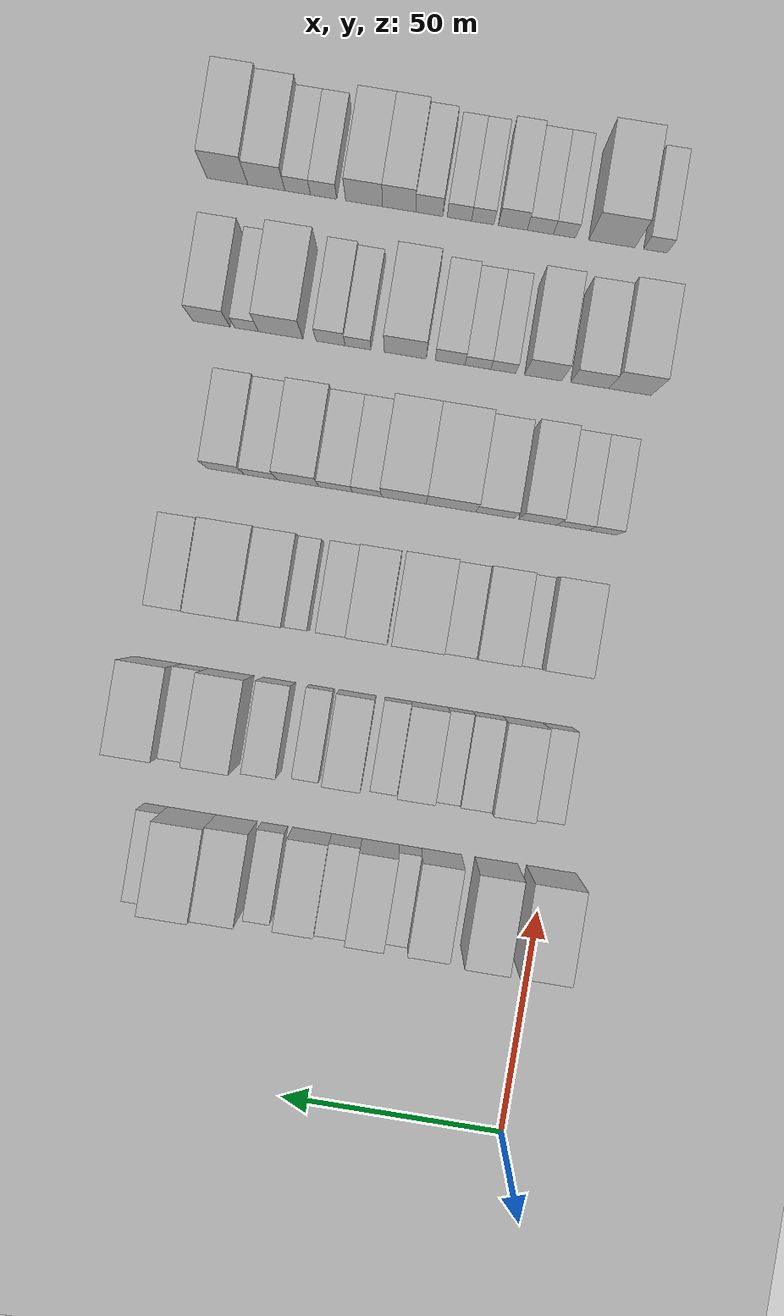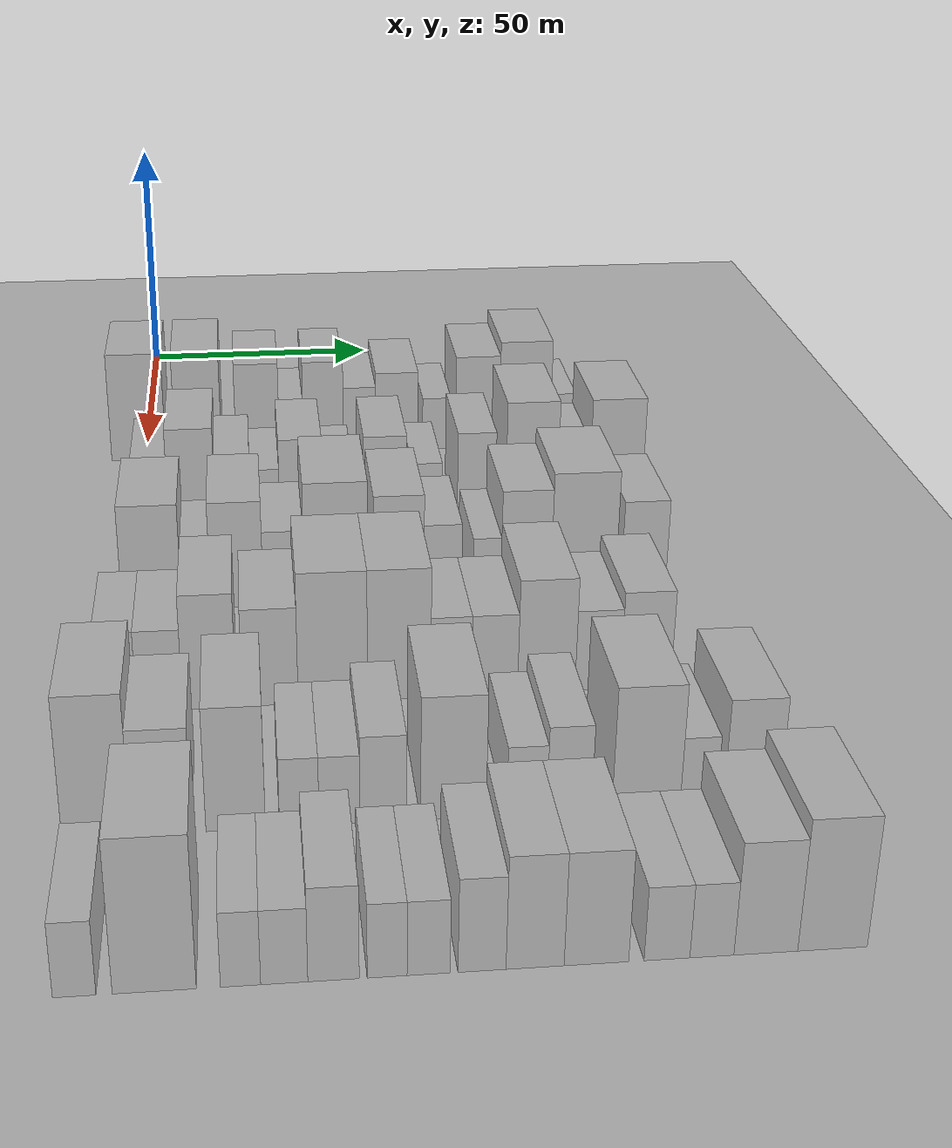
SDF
<sdf version="1.6">
 <world name="default">
  <include><name>ground_plane_1</name><uri>model://HANNAS_ground_plane</uri></include>
  <include>
   <name>ground_plane_2</name>
   <uri>model://HANNAS_ground_plane</uri>
   <pose>100 0 0  0 0 0</pose>
  </include>
  <model name="building_57">
   <static>1</static>
   <pose>50.0000 -1.4303 0 0.000000 0.000000 0.000000</pose>
   <link name="link">
    <pose>0 0 12.00 0 0 0</pose>
    <collision name="collision"><geometry><box><size>20.0000 11.2115 24.0000</size></box></geometry></collision>
    <visual name="visual">
     <cast_shadows>0</cast_shadows>
     <geometry><box><size>20.0000 11.2115 24.0000</size></box></geometry>
     <material>
      <script>
       <uri>model://HANNAS_wall/materials/scripts</uri>
       <uri>model://HANNAS_wall/materials/textures</uri>
       <name>vrc/HANNAS_wall</name>
      </script>
     </material>
    </visual>
   </link>
  </model>
  <model name="building_58">
   <static>1</static>
   <pose>50.0000 10.9994 0 0.000000 0.000000 0.000000</pose>
   <link name="link">
    <pose>0 0 12.00 0 0 0</pose>
    <collision name="collision"><geometry><box><size>20.0000 9.6478 24.0000</size></box></geometry></collision>
    <visual name="visual">
     <cast_shadows>0</cast_shadows>
     <geometry><box><size>20.0000 9.6478 24.0000</size></box></geometry>
     <material>
      <script>
       <uri>model://HANNAS_wall/materials/scripts</uri>
       <uri>model://HANNAS_wall/materials/textures</uri>
       <name>vrc/HANNAS_wall</name>
      </script>
     </material>
    </visual>
   </link>
  </model>
  <model name="building_59">
   <static>1</static>
   <pose>50.0000 23.3561 0 0.000000 0.000000 0.000000</pose>
   <link name="link">
    <pose>0 0 10.50 0 0 0</pose>
    <collision name="collision"><geometry><box><size>20.0000 9.0657 21.0000</size></box></geometry></collision>
    <visual name="visual">
     <cast_shadows>0</cast_shadows>
     <geometry><box><size>20.0000 9.0657 21.0000</size></box></geometry>
     <material>
      <script>
       <uri>model://HANNAS_wall/materials/scripts</uri>
       <uri>model://HANNAS_wall/materials/textures</uri>
       <name>vrc/HANNAS_wall</name>
      </script>
     </material>
    </visual>
   </link>
  </model>
  <model name="building_60">
   <static>1</static>
   <pose>50.0000 30.4040 0 0.000000 0.000000 0.000000</pose>
   <link name="link">
    <pose>0 0 6.00 0 0 0</pose>
    <collision name="collision"><geometry><box><size>20.0000 5.0299 12.0000</size></box></geometry></collision>
    <visual name="visual">
     <cast_shadows>0</cast_shadows>
     <geometry><box><size>20.0000 5.0299 12.0000</size></box></geometry>
     <material>
      <script>
       <uri>model://HANNAS_wall/materials/scripts</uri>
       <uri>model://HANNAS_wall/materials/textures</uri>
       <name>vrc/HANNAS_wall</name>
      </script>
     </material>
    </visual>
   </link>
  </model>
  <model name="building_61">
   <static>1</static>
   <pose>50.0000 37.1323 0 0.000000 0.000000 0.000000</pose>
   <link name="link">
    <pose>0 0 10.50 0 0 0</pose>
    <collision name="collision"><geometry><box><size>20.0000 8.4268 21.0000</size></box></geometry></collision>
    <visual name="visual">
     <cast_shadows>0</cast_shadows>
     <geometry><box><size>20.0000 8.4268 21.0000</size></box></geometry>
     <material>
      <script>
       <uri>model://HANNAS_wall/materials/scripts</uri>
       <uri>model://HANNAS_wall/materials/textures</uri>
       <name>vrc/HANNAS_wall</name>
      </script>
     </material>
    </visual>
   </link>
  </model>
  <model name="building_62">
   <static>1</static>
   <pose>50.0000 44.7533 0 0.000000 0.000000 0.000000</pose>
   <link name="link">
    <pose>0 0 7.50 0 0 0</pose>
    <collision name="collision"><geometry><box><size>20.0000 6.8150 15.0000</size></box></geometry></collision>
    <visual name="visual">
     <cast_shadows>0</cast_shadows>
     <geometry><box><size>20.0000 6.8150 15.0000</size></box></geometry>
     <material>
      <script>
       <uri>model://HANNAS_wall/materials/scripts</uri>
       <uri>model://HANNAS_wall/materials/textures</uri>
       <name>vrc/HANNAS_wall</name>
      </script>
     </material>
    </visual>
   </link>
  </model>
  <model name="building_63">
   <static>1</static>
   <pose>50.0000 52.6108 0 0.000000 0.000000 0.000000</pose>
   <link name="link">
    <pose>0 0 9.00 0 0 0</pose>
    <collision name="collision"><geometry><box><size>20.0000 8.9001 18.0000</size></box></geometry></collision>
    <visual name="visual">
     <cast_shadows>0</cast_shadows>
     <geometry><box><size>20.0000 8.9001 18.0000</size></box></geometry>
     <material>
      <script>
       <uri>model://HANNAS_wall/materials/scripts</uri>
       <uri>model://HANNAS_wall/materials/textures</uri>
       <name>vrc/HANNAS_wall</name>
      </script>
     </material>
    </visual>
   </link>
  </model>
  <model name="building_64">
   <static>1</static>
   <pose>50.0000 61.0438 0 0.000000 0.000000 0.000000</pose>
   <link name="link">
    <pose>0 0 6.00 0 0 0</pose>
    <collision name="collision"><geometry><box><size>20.0000 5.9659 12.0000</size></box></geometry></collision>
    <visual name="visual">
     <cast_shadows>0</cast_shadows>
     <geometry><box><size>20.0000 5.9659 12.0000</size></box></geometry>
     <material>
      <script>
       <uri>model://HANNAS_wall/materials/scripts</uri>
       <uri>model://HANNAS_wall/materials/textures</uri>
       <name>vrc/HANNAS_wall</name>
      </script>
     </material>
    </visual>
   </link>
  </model>
  <model name="building_65">
   <static>1</static>
   <pose>50.0000 69.6880 0 0.000000 0.000000 0.000000</pose>
   <link name="link">
    <pose>0 0 10.50 0 0 0</pose>
    <collision name="collision"><geometry><box><size>20.0000 9.3225 21.0000</size></box></geometry></collision>
    <visual name="visual">
     <cast_shadows>0</cast_shadows>
     <geometry><box><size>20.0000 9.3225 21.0000</size></box></geometry>
     <material>
      <script>
       <uri>model://HANNAS_wall/materials/scripts</uri>
       <uri>model://HANNAS_wall/materials/textures</uri>
       <name>vrc/HANNAS_wall</name>
      </script>
     </material>
    </visual>
   </link>
  </model>
  <model name="building_66">
   <static>1</static>
   <pose>50.0000 79.8039 0 0.000000 0.000000 0.000000</pose>
   <link name="link">
    <pose>0 0 12.00 0 0 0</pose>
    <collision name="collision"><geometry><box><size>20.0000 10.9093 24.0000</size></box></geometry></collision>
    <visual name="visual">
     <cast_shadows>0</cast_shadows>
     <geometry><box><size>20.0000 10.9093 24.0000</size></box></geometry>
     <material>
      <script>
       <uri>model://HANNAS_wall/materials/scripts</uri>
       <uri>model://HANNAS_wall/materials/textures</uri>
       <name>vrc/HANNAS_wall</name>
      </script>
     </material>
    </visual>
   </link>
  </model>
  <model name="building_67">
   <static>1</static>
   <pose>50.0000 87.8766 0 0.000000 0.000000 0.000000</pose>
   <link name="link">
    <pose>0 0 6.00 0 0 0</pose>
    <collision name="collision"><geometry><box><size>20.0000 5.2361 12.0000</size></box></geometry></collision>
    <visual name="visual">
     <cast_shadows>0</cast_shadows>
     <geometry><box><size>20.0000 5.2361 12.0000</size></box></geometry>
     <material>
      <script>
       <uri>model://HANNAS_wall/materials/scripts</uri>
       <uri>model://HANNAS_wall/materials/textures</uri>
       <name>vrc/HANNAS_wall</name>
      </script>
     </material>
    </visual>
   </link>
  </model>
  <model name="building_173">
   <static>1</static>
   <pose>82.0000 2.3529 0 0.000000 0.000000 0.000000</pose>
   <link name="link">
    <pose>0 0 7.50 0 0 0</pose>
    <collision name="collision"><geometry><box><size>20.0000 6.7178 15.0000</size></box></geometry></collision>
    <visual name="visual">
     <cast_shadows>0</cast_shadows>
     <geometry><box><size>20.0000 6.7178 15.0000</size></box></geometry>
     <material>
      <script>
       <uri>model://HANNAS_wall/materials/scripts</uri>
       <uri>model://HANNAS_wall/materials/textures</uri>
       <name>vrc/HANNAS_wall</name>
      </script>
     </material>
    </visual>
   </link>
  </model>
  <model name="building_174">
   <static>1</static>
   <pose>82.0000 10.2117 0 0.000000 0.000000 0.000000</pose>
   <link name="link">
    <pose>0 0 10.50 0 0 0</pose>
    <collision name="collision"><geometry><box><size>20.0000 8.9999 21.0000</size></box></geometry></collision>
    <visual name="visual">
     <cast_shadows>0</cast_shadows>
     <geometry><box><size>20.0000 8.9999 21.0000</size></box></geometry>
     <material>
      <script>
       <uri>model://HANNAS_wall/materials/scripts</uri>
       <uri>model://HANNAS_wall/materials/textures</uri>
       <name>vrc/HANNAS_wall</name>
      </script>
     </material>
    </visual>
   </link>
  </model>
  <model name="building_175">
   <static>1</static>
   <pose>82.0000 18.0980 0 0.000000 0.000000 0.000000</pose>
   <link name="link">
    <pose>0 0 7.50 0 0 0</pose>
    <collision name="collision"><geometry><box><size>20.0000 6.7728 15.0000</size></box></geometry></collision>
    <visual name="visual">
     <cast_shadows>0</cast_shadows>
     <geometry><box><size>20.0000 6.7728 15.0000</size></box></geometry>
     <material>
      <script>
       <uri>model://HANNAS_wall/materials/scripts</uri>
       <uri>model://HANNAS_wall/materials/textures</uri>
       <name>vrc/HANNAS_wall</name>
      </script>
     </material>
    </visual>
   </link>
  </model>
  <model name="building_176">
   <static>1</static>
   <pose>82.0000 24.2576 0 0.000000 0.000000 0.000000</pose>
   <link name="link">
    <pose>0 0 6.00 0 0 0</pose>
    <collision name="collision"><geometry><box><size>20.0000 5.5464 12.0000</size></box></geometry></collision>
    <visual name="visual">
     <cast_shadows>0</cast_shadows>
     <geometry><box><size>20.0000 5.5464 12.0000</size></box></geometry>
     <material>
      <script>
       <uri>model://HANNAS_wall/materials/scripts</uri>
       <uri>model://HANNAS_wall/materials/textures</uri>
       <name>vrc/HANNAS_wall</name>
      </script>
     </material>
    </visual>
   </link>
  </model>
  <model name="building_177">
   <static>1</static>
   <pose>82.0000 31.1795 0 0.000000 0.000000 0.000000</pose>
   <link name="link">
    <pose>0 0 9.00 0 0 0</pose>
    <collision name="collision"><geometry><box><size>20.0000 8.2973 18.0000</size></box></geometry></collision>
    <visual name="visual">
     <cast_shadows>0</cast_shadows>
     <geometry><box><size>20.0000 8.2973 18.0000</size></box></geometry>
     <material>
      <script>
       <uri>model://HANNAS_wall/materials/scripts</uri>
       <uri>model://HANNAS_wall/materials/textures</uri>
       <name>vrc/HANNAS_wall</name>
      </script>
     </material>
    </visual>
   </link>
  </model>
  <model name="building_178">
   <static>1</static>
   <pose>82.0000 38.3129 0 0.000000 0.000000 0.000000</pose>
   <link name="link">
    <pose>0 0 6.00 0 0 0</pose>
    <collision name="collision"><geometry><box><size>20.0000 5.9695 12.0000</size></box></geometry></collision>
    <visual name="visual">
     <cast_shadows>0</cast_shadows>
     <geometry><box><size>20.0000 5.9695 12.0000</size></box></geometry>
     <material>
      <script>
       <uri>model://HANNAS_wall/materials/scripts</uri>
       <uri>model://HANNAS_wall/materials/textures</uri>
       <name>vrc/HANNAS_wall</name>
      </script>
     </material>
    </visual>
   </link>
  </model>
  <model name="building_179">
   <static>1</static>
   <pose>82.0000 47.4602 0 0.000000 0.000000 0.000000</pose>
   <link name="link">
    <pose>0 0 9.00 0 0 0</pose>
    <collision name="collision"><geometry><box><size>20.0000 8.3250 18.0000</size></box></geometry></collision>
    <visual name="visual">
     <cast_shadows>0</cast_shadows>
     <geometry><box><size>20.0000 8.3250 18.0000</size></box></geometry>
     <material>
      <script>
       <uri>model://HANNAS_wall/materials/scripts</uri>
       <uri>model://HANNAS_wall/materials/textures</uri>
       <name>vrc/HANNAS_wall</name>
      </script>
     </material>
    </visual>
   </link>
  </model>
  <model name="building_180">
   <static>1</static>
   <pose>82.0000 55.5620 0 0.000000 0.000000 0.000000</pose>
   <link name="link">
    <pose>0 0 6.00 0 0 0</pose>
    <collision name="collision"><geometry><box><size>20.0000 5.8788 12.0000</size></box></geometry></collision>
    <visual name="visual">
     <cast_shadows>0</cast_shadows>
     <geometry><box><size>20.0000 5.8788 12.0000</size></box></geometry>
     <material>
      <script>
       <uri>model://HANNAS_wall/materials/scripts</uri>
       <uri>model://HANNAS_wall/materials/textures</uri>
       <name>vrc/HANNAS_wall</name>
      </script>
     </material>
    </visual>
   </link>
  </model>
  <model name="building_181">
   <static>1</static>
   <pose>82.0000 65.2228 0 0.000000 0.000000 0.000000</pose>
   <link name="link">
    <pose>0 0 9.00 0 0 0</pose>
    <collision name="collision"><geometry><box><size>20.0000 7.4426 18.0000</size></box></geometry></collision>
    <visual name="visual">
     <cast_shadows>0</cast_shadows>
     <geometry><box><size>20.0000 7.4426 18.0000</size></box></geometry>
     <material>
      <script>
       <uri>model://HANNAS_wall/materials/scripts</uri>
       <uri>model://HANNAS_wall/materials/textures</uri>
       <name>vrc/HANNAS_wall</name>
      </script>
     </material>
    </visual>
   </link>
  </model>
  <model name="building_182">
   <static>1</static>
   <pose>82.0000 76.0347 0 0.000000 0.000000 0.000000</pose>
   <link name="link">
    <pose>0 0 12.00 0 0 0</pose>
    <collision name="collision"><geometry><box><size>20.0000 10.1812 24.0000</size></box></geometry></collision>
    <visual name="visual">
     <cast_shadows>0</cast_shadows>
     <geometry><box><size>20.0000 10.1812 24.0000</size></box></geometry>
     <material>
      <script>
       <uri>model://HANNAS_wall/materials/scripts</uri>
       <uri>model://HANNAS_wall/materials/textures</uri>
       <name>vrc/HANNAS_wall</name>
      </script>
     </material>
    </visual>
   </link>
  </model>
  <model name="building_183">
   <static>1</static>
   <pose>82.0000 84.2622 0 0.000000 0.000000 0.000000</pose>
   <link name="link">
    <pose>0 0 7.50 0 0 0</pose>
    <collision name="collision"><geometry><box><size>20.0000 6.2739 15.0000</size></box></geometry></collision>
    <visual name="visual">
     <cast_shadows>0</cast_shadows>
     <geometry><box><size>20.0000 6.2739 15.0000</size></box></geometry>
     <material>
      <script>
       <uri>model://HANNAS_wall/materials/scripts</uri>
       <uri>model://HANNAS_wall/materials/textures</uri>
       <name>vrc/HANNAS_wall</name>
      </script>
     </material>
    </visual>
   </link>
  </model>
  <model name="building_184">
   <static>1</static>
   <pose>82.0000 92.6617 0 0.000000 0.000000 0.000000</pose>
   <link name="link">
    <pose>0 0 12.00 0 0 0</pose>
    <collision name="collision"><geometry><box><size>20.0000 10.5251 24.0000</size></box></geometry></collision>
    <visual name="visual">
     <cast_shadows>0</cast_shadows>
     <geometry><box><size>20.0000 10.5251 24.0000</size></box></geometry>
     <material>
      <script>
       <uri>model://HANNAS_wall/materials/scripts</uri>
       <uri>model://HANNAS_wall/materials/textures</uri>
       <name>vrc/HANNAS_wall</name>
      </script>
     </material>
    </visual>
   </link>
  </model>
  <model name="building_290">
   <static>1</static>
   <pose>114.0000 3.7071 0 0.000000 0.000000 0.000000</pose>
   <link name="link">
    <pose>0 0 10.50 0 0 0</pose>
    <collision name="collision"><geometry><box><size>20.0000 10.3779 21.0000</size></box></geometry></collision>
    <visual name="visual">
     <cast_shadows>0</cast_shadows>
     <geometry><box><size>20.0000 10.3779 21.0000</size></box></geometry>
     <material>
      <script>
       <uri>model://HANNAS_wall/materials/scripts</uri>
       <uri>model://HANNAS_wall/materials/textures</uri>
       <name>vrc/HANNAS_wall</name>
      </script>
     </material>
    </visual>
   </link>
  </model>
  <model name="building_291">
   <static>1</static>
   <pose>114.0000 11.4436 0 0.000000 0.000000 0.000000</pose>
   <link name="link">
    <pose>0 0 6.00 0 0 0</pose>
    <collision name="collision"><geometry><box><size>20.0000 5.0951 12.0000</size></box></geometry></collision>
    <visual name="visual">
     <cast_shadows>0</cast_shadows>
     <geometry><box><size>20.0000 5.0951 12.0000</size></box></geometry>
     <material>
      <script>
       <uri>model://HANNAS_wall/materials/scripts</uri>
       <uri>model://HANNAS_wall/materials/textures</uri>
       <name>vrc/HANNAS_wall</name>
      </script>
     </material>
    </visual>
   </link>
  </model>
  <model name="building_292">
   <static>1</static>
   <pose>114.0000 18.5982 0 0.000000 0.000000 0.000000</pose>
   <link name="link">
    <pose>0 0 10.50 0 0 0</pose>
    <collision name="collision"><geometry><box><size>20.0000 9.2142 21.0000</size></box></geometry></collision>
    <visual name="visual">
     <cast_shadows>0</cast_shadows>
     <geometry><box><size>20.0000 9.2142 21.0000</size></box></geometry>
     <material>
      <script>
       <uri>model://HANNAS_wall/materials/scripts</uri>
       <uri>model://HANNAS_wall/materials/textures</uri>
       <name>vrc/HANNAS_wall</name>
      </script>
     </material>
    </visual>
   </link>
  </model>
  <model name="building_293">
   <static>1</static>
   <pose>114.0000 26.8194 0 0.000000 0.000000 0.000000</pose>
   <link name="link">
    <pose>0 0 7.50 0 0 0</pose>
    <collision name="collision"><geometry><box><size>20.0000 7.2281 15.0000</size></box></geometry></collision>
    <visual name="visual">
     <cast_shadows>0</cast_shadows>
     <geometry><box><size>20.0000 7.2281 15.0000</size></box></geometry>
     <material>
      <script>
       <uri>model://HANNAS_wall/materials/scripts</uri>
       <uri>model://HANNAS_wall/materials/textures</uri>
       <name>vrc/HANNAS_wall</name>
      </script>
     </material>
    </visual>
   </link>
  </model>
  <model name="building_294">
   <static>1</static>
   <pose>114.0000 36.0660 0 0.000000 0.000000 0.000000</pose>
   <link name="link">
    <pose>0 0 12.00 0 0 0</pose>
    <collision name="collision"><geometry><box><size>20.0000 11.2650 24.0000</size></box></geometry></collision>
    <visual name="visual">
     <cast_shadows>0</cast_shadows>
     <geometry><box><size>20.0000 11.2650 24.0000</size></box></geometry>
     <material>
      <script>
       <uri>model://HANNAS_wall/materials/scripts</uri>
       <uri>model://HANNAS_wall/materials/textures</uri>
       <name>vrc/HANNAS_wall</name>
      </script>
     </material>
    </visual>
   </link>
  </model>
  <model name="building_295">
   <static>1</static>
   <pose>114.0000 47.1552 0 0.000000 0.000000 0.000000</pose>
   <link name="link">
    <pose>0 0 10.50 0 0 0</pose>
    <collision name="collision"><geometry><box><size>20.0000 8.9135 21.0000</size></box></geometry></collision>
    <visual name="visual">
     <cast_shadows>0</cast_shadows>
     <geometry><box><size>20.0000 8.9135 21.0000</size></box></geometry>
     <material>
      <script>
       <uri>model://HANNAS_wall/materials/scripts</uri>
       <uri>model://HANNAS_wall/materials/textures</uri>
       <name>vrc/HANNAS_wall</name>
      </script>
     </material>
    </visual>
   </link>
  </model>
  <model name="building_296">
   <static>1</static>
   <pose>114.0000 54.9673 0 0.000000 0.000000 0.000000</pose>
   <link name="link">
    <pose>0 0 7.50 0 0 0</pose>
    <collision name="collision"><geometry><box><size>20.0000 6.7107 15.0000</size></box></geometry></collision>
    <visual name="visual">
     <cast_shadows>0</cast_shadows>
     <geometry><box><size>20.0000 6.7107 15.0000</size></box></geometry>
     <material>
      <script>
       <uri>model://HANNAS_wall/materials/scripts</uri>
       <uri>model://HANNAS_wall/materials/textures</uri>
       <name>vrc/HANNAS_wall</name>
      </script>
     </material>
    </visual>
   </link>
  </model>
  <model name="building_297">
   <static>1</static>
   <pose>114.0000 62.8353 0 0.000000 0.000000 0.000000</pose>
   <link name="link">
    <pose>0 0 6.00 0 0 0</pose>
    <collision name="collision"><geometry><box><size>20.0000 5.0251 12.0000</size></box></geometry></collision>
    <visual name="visual">
     <cast_shadows>0</cast_shadows>
     <geometry><box><size>20.0000 5.0251 12.0000</size></box></geometry>
     <material>
      <script>
       <uri>model://HANNAS_wall/materials/scripts</uri>
       <uri>model://HANNAS_wall/materials/textures</uri>
       <name>vrc/HANNAS_wall</name>
      </script>
     </material>
    </visual>
   </link>
  </model>
  <model name="building_298">
   <static>1</static>
   <pose>114.0000 69.8465 0 0.000000 0.000000 0.000000</pose>
   <link name="link">
    <pose>0 0 10.50 0 0 0</pose>
    <collision name="collision"><geometry><box><size>20.0000 8.9973 21.0000</size></box></geometry></collision>
    <visual name="visual">
     <cast_shadows>0</cast_shadows>
     <geometry><box><size>20.0000 8.9973 21.0000</size></box></geometry>
     <material>
      <script>
       <uri>model://HANNAS_wall/materials/scripts</uri>
       <uri>model://HANNAS_wall/materials/textures</uri>
       <name>vrc/HANNAS_wall</name>
      </script>
     </material>
    </visual>
   </link>
  </model>
  <model name="building_299">
   <static>1</static>
   <pose>114.0000 80.2089 0 0.000000 0.000000 0.000000</pose>
   <link name="link">
    <pose>0 0 12.00 0 0 0</pose>
    <collision name="collision"><geometry><box><size>20.0000 11.7275 24.0000</size></box></geometry></collision>
    <visual name="visual">
     <cast_shadows>0</cast_shadows>
     <geometry><box><size>20.0000 11.7275 24.0000</size></box></geometry>
     <material>
      <script>
       <uri>model://HANNAS_wall/materials/scripts</uri>
       <uri>model://HANNAS_wall/materials/textures</uri>
       <name>vrc/HANNAS_wall</name>
      </script>
     </material>
    </visual>
   </link>
  </model>
  <model name="building_300">
   <static>1</static>
   <pose>114.0000 91.1390 0 0.000000 0.000000 0.000000</pose>
   <link name="link">
    <pose>0 0 9.00 0 0 0</pose>
    <collision name="collision"><geometry><box><size>20.0000 8.1328 18.0000</size></box></geometry></collision>
    <visual name="visual">
     <cast_shadows>0</cast_shadows>
     <geometry><box><size>20.0000 8.1328 18.0000</size></box></geometry>
     <material>
      <script>
       <uri>model://HANNAS_wall/materials/scripts</uri>
       <uri>model://HANNAS_wall/materials/textures</uri>
       <name>vrc/HANNAS_wall</name>
      </script>
     </material>
    </visual>
   </link>
  </model>
  <model name="building_405">
   <static>1</static>
   <pose>146.0000 -0.6872 0 0.000000 0.000000 0.000000</pose>
   <link name="link">
    <pose>0 0 7.50 0 0 0</pose>
    <collision name="collision"><geometry><box><size>20.0000 6.3886 15.0000</size></box></geometry></collision>
    <visual name="visual">
     <cast_shadows>0</cast_shadows>
     <geometry><box><size>20.0000 6.3886 15.0000</size></box></geometry>
     <material>
      <script>
       <uri>model://HANNAS_wall/materials/scripts</uri>
       <uri>model://HANNAS_wall/materials/textures</uri>
       <name>vrc/HANNAS_wall</name>
      </script>
     </material>
    </visual>
   </link>
  </model>
  <model name="building_406">
   <static>1</static>
   <pose>146.0000 6.1273 0 0.000000 0.000000 0.000000</pose>
   <link name="link">
    <pose>0 0 7.50 0 0 0</pose>
    <collision name="collision"><geometry><box><size>20.0000 7.2403 15.0000</size></box></geometry></collision>
    <visual name="visual">
     <cast_shadows>0</cast_shadows>
     <geometry><box><size>20.0000 7.2403 15.0000</size></box></geometry>
     <material>
      <script>
       <uri>model://HANNAS_wall/materials/scripts</uri>
       <uri>model://HANNAS_wall/materials/textures</uri>
       <name>vrc/HANNAS_wall</name>
      </script>
     </material>
    </visual>
   </link>
  </model>
  <model name="building_407">
   <static>1</static>
   <pose>146.0000 13.9894 0 0.000000 0.000000 0.000000</pose>
   <link name="link">
    <pose>0 0 10.50 0 0 0</pose>
    <collision name="collision"><geometry><box><size>20.0000 8.4840 21.0000</size></box></geometry></collision>
    <visual name="visual">
     <cast_shadows>0</cast_shadows>
     <geometry><box><size>20.0000 8.4840 21.0000</size></box></geometry>
     <material>
      <script>
       <uri>model://HANNAS_wall/materials/scripts</uri>
       <uri>model://HANNAS_wall/materials/textures</uri>
       <name>vrc/HANNAS_wall</name>
      </script>
     </material>
    </visual>
   </link>
  </model>
  <model name="building_408">
   <static>1</static>
   <pose>146.0000 23.6510 0 0.000000 0.000000 0.000000</pose>
   <link name="link">
    <pose>0 0 9.00 0 0 0</pose>
    <collision name="collision"><geometry><box><size>20.0000 8.8392 18.0000</size></box></geometry></collision>
    <visual name="visual">
     <cast_shadows>0</cast_shadows>
     <geometry><box><size>20.0000 8.8392 18.0000</size></box></geometry>
     <material>
      <script>
       <uri>model://HANNAS_wall/materials/scripts</uri>
       <uri>model://HANNAS_wall/materials/textures</uri>
       <name>vrc/HANNAS_wall</name>
      </script>
     </material>
    </visual>
   </link>
  </model>
  <model name="building_409">
   <static>1</static>
   <pose>146.0000 33.6314 0 0.000000 0.000000 0.000000</pose>
   <link name="link">
    <pose>0 0 12.00 0 0 0</pose>
    <collision name="collision"><geometry><box><size>20.0000 11.1215 24.0000</size></box></geometry></collision>
    <visual name="visual">
     <cast_shadows>0</cast_shadows>
     <geometry><box><size>20.0000 11.1215 24.0000</size></box></geometry>
     <material>
      <script>
       <uri>model://HANNAS_wall/materials/scripts</uri>
       <uri>model://HANNAS_wall/materials/textures</uri>
       <name>vrc/HANNAS_wall</name>
      </script>
     </material>
    </visual>
   </link>
  </model>
  <model name="building_410">
   <static>1</static>
   <pose>146.0000 44.2643 0 0.000000 0.000000 0.000000</pose>
   <link name="link">
    <pose>0 0 12.00 0 0 0</pose>
    <collision name="collision"><geometry><box><size>20.0000 10.1444 24.0000</size></box></geometry></collision>
    <visual name="visual">
     <cast_shadows>0</cast_shadows>
     <geometry><box><size>20.0000 10.1444 24.0000</size></box></geometry>
     <material>
      <script>
       <uri>model://HANNAS_wall/materials/scripts</uri>
       <uri>model://HANNAS_wall/materials/textures</uri>
       <name>vrc/HANNAS_wall</name>
      </script>
     </material>
    </visual>
   </link>
  </model>
  <model name="building_411">
   <static>1</static>
   <pose>146.0000 52.6255 0 0.000000 0.000000 0.000000</pose>
   <link name="link">
    <pose>0 0 7.50 0 0 0</pose>
    <collision name="collision"><geometry><box><size>20.0000 6.5781 15.0000</size></box></geometry></collision>
    <visual name="visual">
     <cast_shadows>0</cast_shadows>
     <geometry><box><size>20.0000 6.5781 15.0000</size></box></geometry>
     <material>
      <script>
       <uri>model://HANNAS_wall/materials/scripts</uri>
       <uri>model://HANNAS_wall/materials/textures</uri>
       <name>vrc/HANNAS_wall</name>
      </script>
     </material>
    </visual>
   </link>
  </model>
  <model name="building_412">
   <static>1</static>
   <pose>146.0000 59.6624 0 0.000000 0.000000 0.000000</pose>
   <link name="link">
    <pose>0 0 7.50 0 0 0</pose>
    <collision name="collision"><geometry><box><size>20.0000 7.4957 15.0000</size></box></geometry></collision>
    <visual name="visual">
     <cast_shadows>0</cast_shadows>
     <geometry><box><size>20.0000 7.4957 15.0000</size></box></geometry>
     <material>
      <script>
       <uri>model://HANNAS_wall/materials/scripts</uri>
       <uri>model://HANNAS_wall/materials/textures</uri>
       <name>vrc/HANNAS_wall</name>
      </script>
     </material>
    </visual>
   </link>
  </model>
  <model name="building_413">
   <static>1</static>
   <pose>146.0000 68.1001 0 0.000000 0.000000 0.000000</pose>
   <link name="link">
    <pose>0 0 10.50 0 0 0</pose>
    <collision name="collision"><geometry><box><size>20.0000 9.3798 21.0000</size></box></geometry></collision>
    <visual name="visual">
     <cast_shadows>0</cast_shadows>
     <geometry><box><size>20.0000 9.3798 21.0000</size></box></geometry>
     <material>
      <script>
       <uri>model://HANNAS_wall/materials/scripts</uri>
       <uri>model://HANNAS_wall/materials/textures</uri>
       <name>vrc/HANNAS_wall</name>
      </script>
     </material>
    </visual>
   </link>
  </model>
  <model name="building_414">
   <static>1</static>
   <pose>146.0000 76.5234 0 0.000000 0.000000 0.000000</pose>
   <link name="link">
    <pose>0 0 7.50 0 0 0</pose>
    <collision name="collision"><geometry><box><size>20.0000 7.4667 15.0000</size></box></geometry></collision>
    <visual name="visual">
     <cast_shadows>0</cast_shadows>
     <geometry><box><size>20.0000 7.4667 15.0000</size></box></geometry>
     <material>
      <script>
       <uri>model://HANNAS_wall/materials/scripts</uri>
       <uri>model://HANNAS_wall/materials/textures</uri>
       <name>vrc/HANNAS_wall</name>
      </script>
     </material>
    </visual>
   </link>
  </model>
  <model name="building_415">
   <static>1</static>
   <pose>146.0000 84.4051 0 0.000000 0.000000 0.000000</pose>
   <link name="link">
    <pose>0 0 9.00 0 0 0</pose>
    <collision name="collision"><geometry><box><size>20.0000 8.2967 18.0000</size></box></geometry></collision>
    <visual name="visual">
     <cast_shadows>0</cast_shadows>
     <geometry><box><size>20.0000 8.2967 18.0000</size></box></geometry>
     <material>
      <script>
       <uri>model://HANNAS_wall/materials/scripts</uri>
       <uri>model://HANNAS_wall/materials/textures</uri>
       <name>vrc/HANNAS_wall</name>
      </script>
     </material>
    </visual>
   </link>
  </model>
  <model name="building_527">
   <static>1</static>
   <pose>178.0000 -1.7200 0 0.000000 0.000000 0.000000</pose>
   <link name="link">
    <pose>0 0 12.00 0 0 0</pose>
    <collision name="collision"><geometry><box><size>20.0000 9.6125 24.0000</size></box></geometry></collision>
    <visual name="visual">
     <cast_shadows>0</cast_shadows>
     <geometry><box><size>20.0000 9.6125 24.0000</size></box></geometry>
     <material>
      <script>
       <uri>model://HANNAS_wall/materials/scripts</uri>
       <uri>model://HANNAS_wall/materials/textures</uri>
       <name>vrc/HANNAS_wall</name>
      </script>
     </material>
    </visual>
   </link>
  </model>
  <model name="building_528">
   <static>1</static>
   <pose>178.0000 7.4095 0 0.000000 0.000000 0.000000</pose>
   <link name="link">
    <pose>0 0 9.00 0 0 0</pose>
    <collision name="collision"><geometry><box><size>20.0000 8.6465 18.0000</size></box></geometry></collision>
    <visual name="visual">
     <cast_shadows>0</cast_shadows>
     <geometry><box><size>20.0000 8.6465 18.0000</size></box></geometry>
     <material>
      <script>
       <uri>model://HANNAS_wall/materials/scripts</uri>
       <uri>model://HANNAS_wall/materials/textures</uri>
       <name>vrc/HANNAS_wall</name>
      </script>
     </material>
    </visual>
   </link>
  </model>
  <model name="building_529">
   <static>1</static>
   <pose>178.0000 17.9534 0 0.000000 0.000000 0.000000</pose>
   <link name="link">
    <pose>0 0 10.50 0 0 0</pose>
    <collision name="collision"><geometry><box><size>20.0000 8.4413 21.0000</size></box></geometry></collision>
    <visual name="visual">
     <cast_shadows>0</cast_shadows>
     <geometry><box><size>20.0000 8.4413 21.0000</size></box></geometry>
     <material>
      <script>
       <uri>model://HANNAS_wall/materials/scripts</uri>
       <uri>model://HANNAS_wall/materials/textures</uri>
       <name>vrc/HANNAS_wall</name>
      </script>
     </material>
    </visual>
   </link>
  </model>
  <model name="building_530">
   <static>1</static>
   <pose>178.0000 26.9963 0 0.000000 0.000000 0.000000</pose>
   <link name="link">
    <pose>0 0 6.00 0 0 0</pose>
    <collision name="collision"><geometry><box><size>20.0000 5.6446 12.0000</size></box></geometry></collision>
    <visual name="visual">
     <cast_shadows>0</cast_shadows>
     <geometry><box><size>20.0000 5.6446 12.0000</size></box></geometry>
     <material>
      <script>
       <uri>model://HANNAS_wall/materials/scripts</uri>
       <uri>model://HANNAS_wall/materials/textures</uri>
       <name>vrc/HANNAS_wall</name>
      </script>
     </material>
    </visual>
   </link>
  </model>
  <model name="building_531">
   <static>1</static>
   <pose>178.0000 32.7481 0 0.000000 0.000000 0.000000</pose>
   <link name="link">
    <pose>0 0 6.00 0 0 0</pose>
    <collision name="collision"><geometry><box><size>20.0000 5.8591 12.0000</size></box></geometry></collision>
    <visual name="visual">
     <cast_shadows>0</cast_shadows>
     <geometry><box><size>20.0000 5.8591 12.0000</size></box></geometry>
     <material>
      <script>
       <uri>model://HANNAS_wall/materials/scripts</uri>
       <uri>model://HANNAS_wall/materials/textures</uri>
       <name>vrc/HANNAS_wall</name>
      </script>
     </material>
    </visual>
   </link>
  </model>
  <model name="building_532">
   <static>1</static>
   <pose>178.0000 39.0305 0 0.000000 0.000000 0.000000</pose>
   <link name="link">
    <pose>0 0 7.50 0 0 0</pose>
    <collision name="collision"><geometry><box><size>20.0000 6.7057 15.0000</size></box></geometry></collision>
    <visual name="visual">
     <cast_shadows>0</cast_shadows>
     <geometry><box><size>20.0000 6.7057 15.0000</size></box></geometry>
     <material>
      <script>
       <uri>model://HANNAS_wall/materials/scripts</uri>
       <uri>model://HANNAS_wall/materials/textures</uri>
       <name>vrc/HANNAS_wall</name>
      </script>
     </material>
    </visual>
   </link>
  </model>
  <model name="building_533">
   <static>1</static>
   <pose>178.0000 49.1195 0 0.000000 0.000000 0.000000</pose>
   <link name="link">
    <pose>0 0 10.50 0 0 0</pose>
    <collision name="collision"><geometry><box><size>20.0000 9.4723 21.0000</size></box></geometry></collision>
    <visual name="visual">
     <cast_shadows>0</cast_shadows>
     <geometry><box><size>20.0000 9.4723 21.0000</size></box></geometry>
     <material>
      <script>
       <uri>model://HANNAS_wall/materials/scripts</uri>
       <uri>model://HANNAS_wall/materials/textures</uri>
       <name>vrc/HANNAS_wall</name>
      </script>
     </material>
    </visual>
   </link>
  </model>
  <model name="building_534">
   <static>1</static>
   <pose>178.0000 59.7817 0 0.000000 0.000000 0.000000</pose>
   <link name="link">
    <pose>0 0 6.00 0 0 0</pose>
    <collision name="collision"><geometry><box><size>20.0000 5.8522 12.0000</size></box></geometry></collision>
    <visual name="visual">
     <cast_shadows>0</cast_shadows>
     <geometry><box><size>20.0000 5.8522 12.0000</size></box></geometry>
     <material>
      <script>
       <uri>model://HANNAS_wall/materials/scripts</uri>
       <uri>model://HANNAS_wall/materials/textures</uri>
       <name>vrc/HANNAS_wall</name>
      </script>
     </material>
    </visual>
   </link>
  </model>
  <model name="building_535">
   <static>1</static>
   <pose>178.0000 65.9815 0 0.000000 0.000000 0.000000</pose>
   <link name="link">
    <pose>0 0 7.50 0 0 0</pose>
    <collision name="collision"><geometry><box><size>20.0000 6.5473 15.0000</size></box></geometry></collision>
    <visual name="visual">
     <cast_shadows>0</cast_shadows>
     <geometry><box><size>20.0000 6.5473 15.0000</size></box></geometry>
     <material>
      <script>
       <uri>model://HANNAS_wall/materials/scripts</uri>
       <uri>model://HANNAS_wall/materials/textures</uri>
       <name>vrc/HANNAS_wall</name>
      </script>
     </material>
    </visual>
   </link>
  </model>
  <model name="building_536">
   <static>1</static>
   <pose>178.0000 77.2845 0 0.000000 0.000000 0.000000</pose>
   <link name="link">
    <pose>0 0 10.50 0 0 0</pose>
    <collision name="collision"><geometry><box><size>20.0000 10.0587 21.0000</size></box></geometry></collision>
    <visual name="visual">
     <cast_shadows>0</cast_shadows>
     <geometry><box><size>20.0000 10.0587 21.0000</size></box></geometry>
     <material>
      <script>
       <uri>model://HANNAS_wall/materials/scripts</uri>
       <uri>model://HANNAS_wall/materials/textures</uri>
       <name>vrc/HANNAS_wall</name>
      </script>
     </material>
    </visual>
   </link>
  </model>
  <model name="building_537">
   <static>1</static>
   <pose>178.0000 85.0200 0 0.000000 0.000000 0.000000</pose>
   <link name="link">
    <pose>0 0 6.00 0 0 0</pose>
    <collision name="collision"><geometry><box><size>20.0000 5.4124 12.0000</size></box></geometry></collision>
    <visual name="visual">
     <cast_shadows>0</cast_shadows>
     <geometry><box><size>20.0000 5.4124 12.0000</size></box></geometry>
     <material>
      <script>
       <uri>model://HANNAS_wall/materials/scripts</uri>
       <uri>model://HANNAS_wall/materials/textures</uri>
       <name>vrc/HANNAS_wall</name>
      </script>
     </material>
    </visual>
   </link>
  </model>
  <model name="building_538">
   <static>1</static>
   <pose>178.0000 92.9313 0 0.000000 0.000000 0.000000</pose>
   <link name="link">
    <pose>0 0 9.00 0 0 0</pose>
    <collision name="collision"><geometry><box><size>20.0000 8.4101 18.0000</size></box></geometry></collision>
    <visual name="visual">
     <cast_shadows>0</cast_shadows>
     <geometry><box><size>20.0000 8.4101 18.0000</size></box></geometry>
     <material>
      <script>
       <uri>model://HANNAS_wall/materials/scripts</uri>
       <uri>model://HANNAS_wall/materials/textures</uri>
       <name>vrc/HANNAS_wall</name>
      </script>
     </material>
    </visual>
   </link>
  </model>
  <model name="building_648">
   <static>1</static>
   <pose>210.0000 -2.2843 0 0.000000 0.000000 0.000000</pose>
   <link name="link">
    <pose>0 0 6.00 0 0 0</pose>
    <collision name="collision"><geometry><box><size>20.0000 5.3704 12.0000</size></box></geometry></collision>
    <visual name="visual">
     <cast_shadows>0</cast_shadows>
     <geometry><box><size>20.0000 5.3704 12.0000</size></box></geometry>
     <material>
      <script>
       <uri>model://HANNAS_wall/materials/scripts</uri>
       <uri>model://HANNAS_wall/materials/textures</uri>
       <name>vrc/HANNAS_wall</name>
      </script>
     </material>
    </visual>
   </link>
  </model>
  <model name="building_649">
   <static>1</static>
   <pose>210.0000 7.6253 0 0.000000 0.000000 0.000000</pose>
   <link name="link">
    <pose>0 0 12.00 0 0 0</pose>
    <collision name="collision"><geometry><box><size>20.0000 10.4490 24.0000</size></box></geometry></collision>
    <visual name="visual">
     <cast_shadows>0</cast_shadows>
     <geometry><box><size>20.0000 10.4490 24.0000</size></box></geometry>
     <material>
      <script>
       <uri>model://HANNAS_wall/materials/scripts</uri>
       <uri>model://HANNAS_wall/materials/textures</uri>
       <name>vrc/HANNAS_wall</name>
      </script>
     </material>
    </visual>
   </link>
  </model>
  <model name="building_650">
   <static>1</static>
   <pose>210.0000 18.3678 0 0.000000 0.000000 0.000000</pose>
   <link name="link">
    <pose>0 0 6.00 0 0 0</pose>
    <collision name="collision"><geometry><box><size>20.0000 5.0359 12.0000</size></box></geometry></collision>
    <visual name="visual">
     <cast_shadows>0</cast_shadows>
     <geometry><box><size>20.0000 5.0359 12.0000</size></box></geometry>
     <material>
      <script>
       <uri>model://HANNAS_wall/materials/scripts</uri>
       <uri>model://HANNAS_wall/materials/textures</uri>
       <name>vrc/HANNAS_wall</name>
      </script>
     </material>
    </visual>
   </link>
  </model>
  <model name="building_651">
   <static>1</static>
   <pose>210.0000 23.8467 0 0.000000 0.000000 0.000000</pose>
   <link name="link">
    <pose>0 0 6.00 0 0 0</pose>
    <collision name="collision"><geometry><box><size>20.0000 5.9218 12.0000</size></box></geometry></collision>
    <visual name="visual">
     <cast_shadows>0</cast_shadows>
     <geometry><box><size>20.0000 5.9218 12.0000</size></box></geometry>
     <material>
      <script>
       <uri>model://HANNAS_wall/materials/scripts</uri>
       <uri>model://HANNAS_wall/materials/textures</uri>
       <name>vrc/HANNAS_wall</name>
      </script>
     </material>
    </visual>
   </link>
  </model>
  <model name="building_652">
   <static>1</static>
   <pose>210.0000 30.0539 0 0.000000 0.000000 0.000000</pose>
   <link name="link">
    <pose>0 0 7.50 0 0 0</pose>
    <collision name="collision"><geometry><box><size>20.0000 6.4927 15.0000</size></box></geometry></collision>
    <visual name="visual">
     <cast_shadows>0</cast_shadows>
     <geometry><box><size>20.0000 6.4927 15.0000</size></box></geometry>
     <material>
      <script>
       <uri>model://HANNAS_wall/materials/scripts</uri>
       <uri>model://HANNAS_wall/materials/textures</uri>
       <name>vrc/HANNAS_wall</name>
      </script>
     </material>
    </visual>
   </link>
  </model>
  <model name="building_653">
   <static>1</static>
   <pose>210.0000 36.8316 0 0.000000 0.000000 0.000000</pose>
   <link name="link">
    <pose>0 0 6.00 0 0 0</pose>
    <collision name="collision"><geometry><box><size>20.0000 5.0628 12.0000</size></box></geometry></collision>
    <visual name="visual">
     <cast_shadows>0</cast_shadows>
     <geometry><box><size>20.0000 5.0628 12.0000</size></box></geometry>
     <material>
      <script>
       <uri>model://HANNAS_wall/materials/scripts</uri>
       <uri>model://HANNAS_wall/materials/textures</uri>
       <name>vrc/HANNAS_wall</name>
      </script>
     </material>
    </visual>
   </link>
  </model>
  <model name="building_654">
   <static>1</static>
   <pose>210.0000 42.1040 0 0.000000 0.000000 0.000000</pose>
   <link name="link">
    <pose>0 0 6.00 0 0 0</pose>
    <collision name="collision"><geometry><box><size>20.0000 5.4820 12.0000</size></box></geometry></collision>
    <visual name="visual">
     <cast_shadows>0</cast_shadows>
     <geometry><box><size>20.0000 5.4820 12.0000</size></box></geometry>
     <material>
      <script>
       <uri>model://HANNAS_wall/materials/scripts</uri>
       <uri>model://HANNAS_wall/materials/textures</uri>
       <name>vrc/HANNAS_wall</name>
      </script>
     </material>
    </visual>
   </link>
  </model>
  <model name="building_655">
   <static>1</static>
   <pose>210.0000 48.9168 0 0.000000 0.000000 0.000000</pose>
   <link name="link">
    <pose>0 0 7.50 0 0 0</pose>
    <collision name="collision"><geometry><box><size>20.0000 6.1437 15.0000</size></box></geometry></collision>
    <visual name="visual">
     <cast_shadows>0</cast_shadows>
     <geometry><box><size>20.0000 6.1437 15.0000</size></box></geometry>
     <material>
      <script>
       <uri>model://HANNAS_wall/materials/scripts</uri>
       <uri>model://HANNAS_wall/materials/textures</uri>
       <name>vrc/HANNAS_wall</name>
      </script>
     </material>
    </visual>
   </link>
  </model>
  <model name="building_656">
   <static>1</static>
   <pose>210.0000 55.7298 0 0.000000 0.000000 0.000000</pose>
   <link name="link">
    <pose>0 0 9.00 0 0 0</pose>
    <collision name="collision"><geometry><box><size>20.0000 7.4823 18.0000</size></box></geometry></collision>
    <visual name="visual">
     <cast_shadows>0</cast_shadows>
     <geometry><box><size>20.0000 7.4823 18.0000</size></box></geometry>
     <material>
      <script>
       <uri>model://HANNAS_wall/materials/scripts</uri>
       <uri>model://HANNAS_wall/materials/textures</uri>
       <name>vrc/HANNAS_wall</name>
      </script>
     </material>
    </visual>
   </link>
  </model>
  <model name="building_657">
   <static>1</static>
   <pose>210.0000 63.6487 0 0.000000 0.000000 0.000000</pose>
   <link name="link">
    <pose>0 0 9.00 0 0 0</pose>
    <collision name="collision"><geometry><box><size>20.0000 8.3555 18.0000</size></box></geometry></collision>
    <visual name="visual">
     <cast_shadows>0</cast_shadows>
     <geometry><box><size>20.0000 8.3555 18.0000</size></box></geometry>
     <material>
      <script>
       <uri>model://HANNAS_wall/materials/scripts</uri>
       <uri>model://HANNAS_wall/materials/textures</uri>
       <name>vrc/HANNAS_wall</name>
      </script>
     </material>
    </visual>
   </link>
  </model>
  <model name="building_658">
   <static>1</static>
   <pose>210.0000 72.8087 0 0.000000 0.000000 0.000000</pose>
   <link name="link">
    <pose>0 0 6.00 0 0 0</pose>
    <collision name="collision"><geometry><box><size>20.0000 5.9645 12.0000</size></box></geometry></collision>
    <visual name="visual">
     <cast_shadows>0</cast_shadows>
     <geometry><box><size>20.0000 5.9645 12.0000</size></box></geometry>
     <material>
      <script>
       <uri>model://HANNAS_wall/materials/scripts</uri>
       <uri>model://HANNAS_wall/materials/textures</uri>
       <name>vrc/HANNAS_wall</name>
      </script>
     </material>
    </visual>
   </link>
  </model>
  <model name="building_659">
   <static>1</static>
   <pose>210.0000 78.6708 0 0.000000 0.000000 0.000000</pose>
   <link name="link">
    <pose>0 0 6.00 0 0 0</pose>
    <collision name="collision"><geometry><box><size>20.0000 5.7599 12.0000</size></box></geometry></collision>
    <visual name="visual">
     <cast_shadows>0</cast_shadows>
     <geometry><box><size>20.0000 5.7599 12.0000</size></box></geometry>
     <material>
      <script>
       <uri>model://HANNAS_wall/materials/scripts</uri>
       <uri>model://HANNAS_wall/materials/textures</uri>
       <name>vrc/HANNAS_wall</name>
      </script>
     </material>
    </visual>
   </link>
  </model>
  <model name="building_660">
   <static>1</static>
   <pose>210.0000 85.7482 0 0.000000 0.000000 0.000000</pose>
   <link name="link">
    <pose>0 0 9.00 0 0 0</pose>
    <collision name="collision"><geometry><box><size>20.0000 8.3948 18.0000</size></box></geometry></collision>
    <visual name="visual">
     <cast_shadows>0</cast_shadows>
     <geometry><box><size>20.0000 8.3948 18.0000</size></box></geometry>
     <material>
      <script>
       <uri>model://HANNAS_wall/materials/scripts</uri>
       <uri>model://HANNAS_wall/materials/textures</uri>
       <name>vrc/HANNAS_wall</name>
      </script>
     </material>
    </visual>
   </link>
  </model>
  <model name="building_661">
   <static>1</static>
   <pose>210.0000 94.5556 0 0.000000 0.000000 0.000000</pose>
   <link name="link">
    <pose>0 0 10.50 0 0 0</pose>
    <collision name="collision"><geometry><box><size>20.0000 9.2201 21.0000</size></box></geometry></collision>
    <visual name="visual">
     <cast_shadows>0</cast_shadows>
     <geometry><box><size>20.0000 9.2201 21.0000</size></box></geometry>
     <material>
      <script>
       <uri>model://HANNAS_wall/materials/scripts</uri>
       <uri>model://HANNAS_wall/materials/textures</uri>
       <name>vrc/HANNAS_wall</name>
      </script>
     </material>
    </visual>
   </link>
  </model>
 </world>
</sdf>
